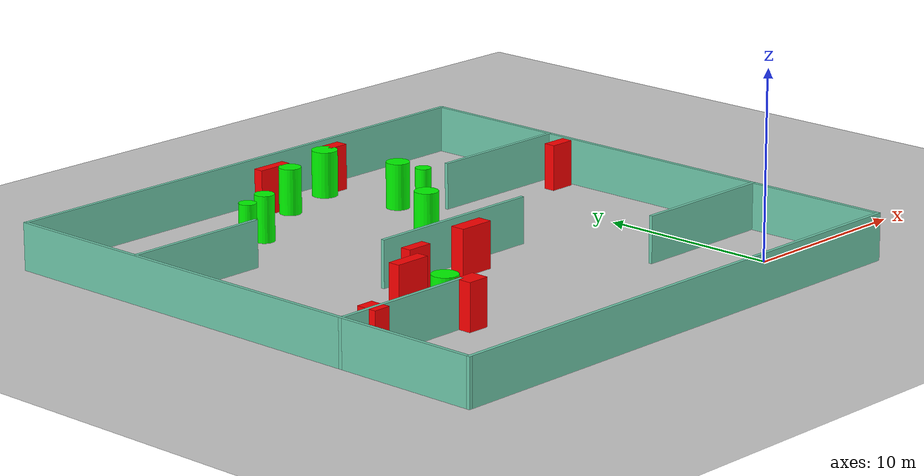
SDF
<sdf version="1.7">
 <world name="default">
  <light name="sun" type="directional">
   <pose>0 0 10 0 -0 0</pose>
   <diffuse>0.8 0.8 0.8 1</diffuse>
   <specular>0.2 0.2 0.2 1</specular>
   <attenuation>
    <range>1000</range>
    <constant>0.9</constant>
    <linear>0.01</linear>
    <quadratic>0.001</quadratic>
   </attenuation>
   <direction>-0.5 0.1 -0.9</direction>
   <spot><inner_angle>0</inner_angle><outer_angle>0</outer_angle><falloff>0</falloff></spot>
  </light>
  <model name="ground_plane">
   <static>1</static>
   <link name="link">
    <collision name="collision">
     <geometry><plane><normal>0 0 1</normal><size>100 100</size></plane></geometry>
     <surface>
      <contact><collide_bitmask>65535</collide_bitmask></contact>
      <friction><ode><mu>100</mu><mu2>50</mu2></ode></friction>
     </surface>
    </collision>
    <visual name="visual">
     <cast_shadows>0</cast_shadows>
     <geometry><plane><normal>0 0 1</normal><size>100 100</size></plane></geometry>
     <material>
      <script><uri>file://media/materials/scripts/gazebo.material</uri><name>Gazebo/Grey</name></script>
     </material>
    </visual>
   </link>
  </model>
  <gravity>0 0 -9.8</gravity>
  <magnetic_field>6e-06 2.3e-05 -4.2e-05</magnetic_field>
  <atmosphere type="adiabatic"/>
  <physics type="ode">
   <max_step_size>0.001</max_step_size>
   <real_time_factor>1</real_time_factor>
   <real_time_update_rate>1000</real_time_update_rate>
  </physics>
  <scene><ambient>0.4 0.4 0.4 1</ambient><background>0.7 0.7 0.7 1</background><shadows>1</shadows></scene>
  <spherical_coordinates>
   <surface_model>EARTH_WGS84</surface_model>
   <latitude_deg>0</latitude_deg>
   <longitude_deg>0</longitude_deg>
   <elevation>0</elevation>
   <heading_deg>0</heading_deg>
  </spherical_coordinates>
  <model name="my_base_walls">
   <link name="Wall_10">
    <collision name="Wall_10_Collision">
     <geometry><box><size>8.2 0.2 2.5</size></box></geometry>
     <pose>0 0 1.25 0 -0 0</pose>
    </collision>
    <visual name="Wall_10_Visual">
     <pose>0 0 1.25 0 -0 0</pose>
     <geometry><box><size>8.2 0.2 2.5</size></box></geometry>
     <material>
      <script><uri>file://media/materials/scripts/gazebo.material</uri><name>Gazebo/Grey</name></script>
      <ambient>0.435294 0.796078 0.67451 1</ambient>
     </material>
     <meta><layer>0</layer></meta>
    </visual>
    <pose>-11 -7 0 0 -0 0</pose>
   </link>
   <link name="Wall_12">
    <collision name="Wall_12_Collision">
     <geometry><box><size>8.2 0.2 2.5</size></box></geometry>
     <pose>0 0 1.25 0 -0 0</pose>
    </collision>
    <visual name="Wall_12_Visual">
     <pose>0 0 1.25 0 -0 0</pose>
     <geometry><box><size>8.2 0.2 2.5</size></box></geometry>
     <material>
      <script><uri>file://media/materials/scripts/gazebo.material</uri><name>Gazebo/Grey</name></script>
      <ambient>0.435294 0.796078 0.67451 1</ambient>
     </material>
     <meta><layer>0</layer></meta>
    </visual>
    <pose>-11 7 0 0 -0 0</pose>
   </link>
   <link name="Wall_14">
    <collision name="Wall_14_Collision">
     <geometry><box><size>8.2 0.2 2.5</size></box></geometry>
     <pose>0 0 1.25 0 -0 0</pose>
    </collision>
    <visual name="Wall_14_Visual">
     <pose>0 0 1.25 0 -0 0</pose>
     <geometry><box><size>8.2 0.2 2.5</size></box></geometry>
     <material>
      <script><uri>file://media/materials/scripts/gazebo.material</uri><name>Gazebo/Grey</name></script>
      <ambient>0.435294 0.796078 0.67451 1</ambient>
     </material>
     <meta><layer>0</layer></meta>
    </visual>
    <pose>11 7 0 0 -0 3.14159</pose>
   </link>
   <link name="Wall_16">
    <collision name="Wall_16_Collision">
     <geometry><box><size>10.2 0.2 2.5</size></box></geometry>
     <pose>0 0 1.25 0 -0 0</pose>
    </collision>
    <visual name="Wall_16_Visual">
     <pose>0 0 1.25 0 -0 0</pose>
     <geometry><box><size>10.2 0.2 2.5</size></box></geometry>
     <material>
      <script><uri>file://media/materials/scripts/gazebo.material</uri><name>Gazebo/Grey</name></script>
      <ambient>0.435294 0.796078 0.67451 1</ambient>
     </material>
     <meta><layer>0</layer></meta>
    </visual>
    <pose>0 0 0 0 -0 3.14159</pose>
   </link>
   <link name="Wall_2">
    <collision name="Wall_2_Collision">
     <geometry><box><size>30.2 0.2 2.5</size></box></geometry>
     <pose>0 0 1.25 0 -0 0</pose>
    </collision>
    <visual name="Wall_2_Visual">
     <pose>0 0 1.25 0 -0 0</pose>
     <geometry><box><size>30.2 0.2 2.5</size></box></geometry>
     <material>
      <script><uri>file://media/materials/scripts/gazebo.material</uri><name>Gazebo/Grey</name></script>
      <ambient>0.435294 0.796078 0.67451 1</ambient>
     </material>
     <meta><layer>0</layer></meta>
    </visual>
    <pose>0 -15 0 0 -0 3.14159</pose>
   </link>
   <link name="Wall_3">
    <collision name="Wall_3_Collision">
     <geometry><box><size>30.2 0.2 2.5</size></box></geometry>
     <pose>0 0 1.25 0 -0 0</pose>
    </collision>
    <visual name="Wall_3_Visual">
     <pose>0 0 1.25 0 -0 0</pose>
     <geometry><box><size>30.2 0.2 2.5</size></box></geometry>
     <material>
      <script><uri>file://media/materials/scripts/gazebo.material</uri><name>Gazebo/Grey</name></script>
      <ambient>0.435294 0.796078 0.67451 1</ambient>
     </material>
     <meta><layer>0</layer></meta>
    </visual>
    <pose>-15 0 0 0 -0 1.5708</pose>
   </link>
   <link name="Wall_4">
    <collision name="Wall_4_Collision">
     <geometry><box><size>30.2 0.2 2.5</size></box></geometry>
     <pose>0 0 1.25 0 -0 0</pose>
    </collision>
    <visual name="Wall_4_Visual">
     <pose>0 0 1.25 0 -0 0</pose>
     <geometry><box><size>30.2 0.2 2.5</size></box></geometry>
     <material>
      <script><uri>file://media/materials/scripts/gazebo.material</uri><name>Gazebo/Grey</name></script>
      <ambient>0.435294 0.796078 0.67451 1</ambient>
     </material>
     <meta><layer>0</layer></meta>
    </visual>
    <pose>0 15 0 0 -0 0</pose>
   </link>
   <link name="Wall_6">
    <collision name="Wall_6_Collision">
     <geometry><box><size>30.2 0.2 2.5</size></box></geometry>
     <pose>0 0 1.25 0 -0 0</pose>
    </collision>
    <visual name="Wall_6_Visual">
     <pose>0 0 1.25 0 -0 0</pose>
     <geometry><box><size>30.2 0.2 2.5</size></box></geometry>
     <material>
      <script><uri>file://media/materials/scripts/gazebo.material</uri><name>Gazebo/Grey</name></script>
      <ambient>0.435294 0.796078 0.67451 1</ambient>
     </material>
     <meta><layer>0</layer></meta>
    </visual>
    <pose>15 0 0 0 -0 1.5708</pose>
   </link>
   <link name="Wall_8">
    <collision name="Wall_8_Collision">
     <geometry><box><size>8.2 0.2 2.5</size></box></geometry>
     <pose>0 0 1.25 0 -0 0</pose>
    </collision>
    <visual name="Wall_8_Visual">
     <pose>0 0 1.25 0 -0 0</pose>
     <geometry><box><size>8.2 0.2 2.5</size></box></geometry>
     <material>
      <script><uri>file://media/materials/scripts/gazebo.material</uri><name>Gazebo/Grey</name></script>
      <ambient>0.435294 0.796078 0.67451 1</ambient>
     </material>
     <meta><layer>0</layer></meta>
    </visual>
    <pose>11 -7 0 0 -0 3.14159</pose>
   </link>
   <static>1</static>
   <pose>-11 11 0 0 -0 0</pose>
  </model>
  <model name="cylinder1">
   <static>1</static>
   <link name="link">
    <inertial>
     <mass>1</mass>
     <inertia><ixx>0.5</ixx><ixy>0</ixy><ixz>0</ixz><iyy>0.5</iyy><iyz>0</iyz><izz>1</izz></inertia>
    </inertial>
    <collision name="collision">
     <geometry><cylinder><radius>0.6450734228280675</radius><length>2.5</length></cylinder></geometry>
    </collision>
    <visual name="visual">
     <geometry><cylinder><radius>0.6450734228280675</radius><length>2.5</length></cylinder></geometry>
     <material>
      <ambient>0 1 0 1</ambient>
      <diffuse>0 1 0 1</diffuse>
      <specular>0.1 0.1 0.1 1</specular>
      <emissive>0 0 0 0</emissive>
     </material>
    </visual>
   </link>
   <pose>-8.485942803298816 15.27104300888562 1.25 0 0 0</pose>
  </model>
  <model name="cylinder2">
   <static>1</static>
   <link name="link">
    <inertial>
     <mass>1</mass>
     <inertia><ixx>0.5</ixx><ixy>0</ixy><ixz>0</ixz><iyy>0.5</iyy><iyz>0</iyz><izz>1</izz></inertia>
    </inertial>
    <collision name="collision">
     <geometry><cylinder><radius>0.46727635755425856</radius><length>2.5</length></cylinder></geometry>
    </collision>
    <visual name="visual">
     <geometry><cylinder><radius>0.46727635755425856</radius><length>2.5</length></cylinder></geometry>
     <material>
      <ambient>0 1 0 1</ambient>
      <diffuse>0 1 0 1</diffuse>
      <specular>0.1 0.1 0.1 1</specular>
      <emissive>0 0 0 0</emissive>
     </material>
    </visual>
   </link>
   <pose>-16.200236934852764 20.39649418300123 1.25 0 0 0</pose>
  </model>
  <model name="cylinder3">
   <static>1</static>
   <link name="link">
    <inertial>
     <mass>1</mass>
     <inertia><ixx>0.5</ixx><ixy>0</ixy><ixz>0</ixz><iyy>0.5</iyy><iyz>0</iyz><izz>1</izz></inertia>
    </inertial>
    <collision name="collision">
     <geometry><cylinder><radius>0.5949647687196524</radius><length>2.5</length></cylinder></geometry>
    </collision>
    <visual name="visual">
     <geometry><cylinder><radius>0.5949647687196524</radius><length>2.5</length></cylinder></geometry>
     <material>
      <ambient>0 1 0 1</ambient>
      <diffuse>0 1 0 1</diffuse>
      <specular>0.1 0.1 0.1 1</specular>
      <emissive>0 0 0 0</emissive>
     </material>
    </visual>
   </link>
   <pose>-10.131025606863753 23.527638765621024 1.25 0 0 0</pose>
  </model>
  <model name="cylinder4">
   <static>1</static>
   <link name="link">
    <inertial>
     <mass>1</mass>
     <inertia><ixx>0.5</ixx><ixy>0</ixy><ixz>0</ixz><iyy>0.5</iyy><iyz>0</iyz><izz>1</izz></inertia>
    </inertial>
    <collision name="collision">
     <geometry><cylinder><radius>0.6955871540741441</radius><length>2.5</length></cylinder></geometry>
    </collision>
    <visual name="visual">
     <geometry><cylinder><radius>0.6955871540741441</radius><length>2.5</length></cylinder></geometry>
     <material>
      <ambient>0 1 0 1</ambient>
      <diffuse>0 1 0 1</diffuse>
      <specular>0.1 0.1 0.1 1</specular>
      <emissive>0 0 0 0</emissive>
     </material>
    </visual>
   </link>
   <pose>-6.566845945953055 24.54476362276498 1.25 0 0 0</pose>
  </model>
  <model name="cylinder5">
   <static>1</static>
   <link name="link">
    <inertial>
     <mass>1</mass>
     <inertia><ixx>0.5</ixx><ixy>0</ixy><ixz>0</ixz><iyy>0.5</iyy><iyz>0</iyz><izz>1</izz></inertia>
    </inertial>
    <collision name="collision">
     <geometry><cylinder><radius>0.42661705789255505</radius><length>2.5</length></cylinder></geometry>
    </collision>
    <visual name="visual">
     <geometry><cylinder><radius>0.42661705789255505</radius><length>2.5</length></cylinder></geometry>
     <material>
      <ambient>0 1 0 1</ambient>
      <diffuse>0 1 0 1</diffuse>
      <specular>0.1 0.1 0.1 1</specular>
      <emissive>0 0 0 0</emissive>
     </material>
    </visual>
   </link>
   <pose>-5.501168806549636 18.335218645636306 1.25 0 0 0</pose>
  </model>
  <model name="cylinder6">
   <static>1</static>
   <link name="link">
    <inertial>
     <mass>1</mass>
     <inertia><ixx>0.5</ixx><ixy>0</ixy><ixz>0</ixz><iyy>0.5</iyy><iyz>0</iyz><izz>1</izz></inertia>
    </inertial>
    <collision name="collision">
     <geometry><cylinder><radius>0.5271858512293892</radius><length>2.5</length></cylinder></geometry>
    </collision>
    <visual name="visual">
     <geometry><cylinder><radius>0.5271858512293892</radius><length>2.5</length></cylinder></geometry>
     <material>
      <ambient>0 1 0 1</ambient>
      <diffuse>0 1 0 1</diffuse>
      <specular>0.1 0.1 0.1 1</specular>
      <emissive>0 0 0 0</emissive>
     </material>
    </visual>
   </link>
   <pose>-14.496420874564837 20.933275187320305 1.25 0 0 0</pose>
  </model>
  <model name="cylinder7">
   <static>1</static>
   <link name="link">
    <inertial>
     <mass>1</mass>
     <inertia><ixx>0.5</ixx><ixy>0</ixy><ixz>0</ixz><iyy>0.5</iyy><iyz>0</iyz><izz>1</izz></inertia>
    </inertial>
    <collision name="collision">
     <geometry><cylinder><radius>0.6322177813575918</radius><length>2.5</length></cylinder></geometry>
    </collision>
    <visual name="visual">
     <geometry><cylinder><radius>0.6322177813575918</radius><length>2.5</length></cylinder></geometry>
     <material>
      <ambient>0 1 0 1</ambient>
      <diffuse>0 1 0 1</diffuse>
      <specular>0.1 0.1 0.1 1</specular>
      <emissive>0 0 0 0</emissive>
     </material>
    </visual>
   </link>
   <pose>-5.585130548565944 20.097822513880953 1.25 0 0 0</pose>
  </model>
  <model name="cylinder8">
   <static>1</static>
   <link name="link">
    <inertial>
     <mass>1</mass>
     <inertia><ixx>0.5</ixx><ixy>0</ixy><ixz>0</ixz><iyy>0.5</iyy><iyz>0</iyz><izz>1</izz></inertia>
    </inertial>
    <collision name="collision">
     <geometry><cylinder><radius>0.6896953078632648</radius><length>2.5</length></cylinder></geometry>
    </collision>
    <visual name="visual">
     <geometry><cylinder><radius>0.6896953078632648</radius><length>2.5</length></cylinder></geometry>
     <material>
      <ambient>0 1 0 1</ambient>
      <diffuse>0 1 0 1</diffuse>
      <specular>0.1 0.1 0.1 1</specular>
      <emissive>0 0 0 0</emissive>
     </material>
    </visual>
   </link>
   <pose>-18.017713555491834 5.003977011624119 1.25 0 0 0</pose>
  </model>
  <model name="box1">
   <static>1</static>
   <link name="link">
    <inertial>
     <mass>1</mass>
     <inertia><ixx>0.083</ixx><ixy>0</ixy><ixz>0</ixz><iyy>0.083</iyy><iyz>0</iyz><izz>0.083</izz></inertia>
    </inertial>
    <collision name="collision">
     <geometry><box><size>1.9980929567284118 0.6480552571560035 2.5</size></box></geometry>
    </collision>
    <visual name="visual">
     <geometry><box><size>1.9980929567284118 0.6480552571560035 2.5</size></box></geometry>
     <material>
      <ambient>1 0 0 1</ambient>
      <diffuse>1 0 0 1</diffuse>
      <specular>0.1 0.1 0.1 1</specular>
      <emissive>0 0 0 0</emissive>
     </material>
    </visual>
    <sensor name="my_contact" type="contact">
     <contact><collision>box_collision</collision><topic>__default_topic__</topic></contact>
    </sensor>
   </link>
   <pose>-17.538054963608474 7.875803486075226 1.25 0 0 0</pose>
  </model>
  <model name="box2">
   <static>1</static>
   <link name="link">
    <inertial>
     <mass>1</mass>
     <inertia><ixx>0.083</ixx><ixy>0</ixy><ixz>0</ixz><iyy>0.083</iyy><iyz>0</iyz><izz>0.083</izz></inertia>
    </inertial>
    <collision name="collision">
     <geometry><box><size>1.448213968036836 0.571456540996274 2.5</size></box></geometry>
    </collision>
    <visual name="visual">
     <geometry><box><size>1.448213968036836 0.571456540996274 2.5</size></box></geometry>
     <material>
      <ambient>1 0 0 1</ambient>
      <diffuse>1 0 0 1</diffuse>
      <specular>0.1 0.1 0.1 1</specular>
      <emissive>0 0 0 0</emissive>
     </material>
    </visual>
    <sensor name="my_contact" type="contact">
     <contact><collision>box_collision</collision><topic>__default_topic__</topic></contact>
    </sensor>
   </link>
   <pose>-15.70027828633228 9.128871581082649 1.25 0 0 0</pose>
  </model>
  <model name="box3">
   <static>1</static>
   <link name="link">
    <inertial>
     <mass>1</mass>
     <inertia><ixx>0.083</ixx><ixy>0</ixy><ixz>0</ixz><iyy>0.083</iyy><iyz>0</iyz><izz>0.083</izz></inertia>
    </inertial>
    <collision name="collision">
     <geometry><box><size>1.643191396158272 0.6796150436436558 2.5</size></box></geometry>
    </collision>
    <visual name="visual">
     <geometry><box><size>1.643191396158272 0.6796150436436558 2.5</size></box></geometry>
     <material>
      <ambient>1 0 0 1</ambient>
      <diffuse>1 0 0 1</diffuse>
      <specular>0.1 0.1 0.1 1</specular>
      <emissive>0 0 0 0</emissive>
     </material>
    </visual>
    <sensor name="my_contact" type="contact">
     <contact><collision>box_collision</collision><topic>__default_topic__</topic></contact>
    </sensor>
   </link>
   <pose>-5.824383105082315 24.80662916474938 1.25 0 0 0</pose>
  </model>
  <model name="box4">
   <static>1</static>
   <link name="link">
    <inertial>
     <mass>1</mass>
     <inertia><ixx>0.083</ixx><ixy>0</ixy><ixz>0</ixz><iyy>0.083</iyy><iyz>0</iyz><izz>0.083</izz></inertia>
    </inertial>
    <collision name="collision">
     <geometry><box><size>1.4156582616063758 0.6328229744354551 2.5</size></box></geometry>
    </collision>
    <visual name="visual">
     <geometry><box><size>1.4156582616063758 0.6328229744354551 2.5</size></box></geometry>
     <material>
      <ambient>1 0 0 1</ambient>
      <diffuse>1 0 0 1</diffuse>
      <specular>0.1 0.1 0.1 1</specular>
      <emissive>0 0 0 0</emissive>
     </material>
    </visual>
    <sensor name="my_contact" type="contact">
     <contact><collision>box_collision</collision><topic>__default_topic__</topic></contact>
    </sensor>
   </link>
   <pose>2.9759175050511644 16.45035124493721 1.25 0 0 0</pose>
  </model>
  <model name="box5">
   <static>1</static>
   <link name="link">
    <inertial>
     <mass>1</mass>
     <inertia><ixx>0.083</ixx><ixy>0</ixy><ixz>0</ixz><iyy>0.083</iyy><iyz>0</iyz><izz>0.083</izz></inertia>
    </inertial>
    <collision name="collision">
     <geometry><box><size>2.0010723952838063 0.534870469336673 2.5</size></box></geometry>
    </collision>
    <visual name="visual">
     <geometry><box><size>2.0010723952838063 0.534870469336673 2.5</size></box></geometry>
     <material>
      <ambient>1 0 0 1</ambient>
      <diffuse>1 0 0 1</diffuse>
      <specular>0.1 0.1 0.1 1</specular>
      <emissive>0 0 0 0</emissive>
     </material>
    </visual>
    <sensor name="my_contact" type="contact">
     <contact><collision>box_collision</collision><topic>__default_topic__</topic></contact>
    </sensor>
   </link>
   <pose>-10.665422571073586 24.32511095664961 1.25 0 0 0</pose>
  </model>
  <model name="box6">
   <static>1</static>
   <link name="link">
    <inertial>
     <mass>1</mass>
     <inertia><ixx>0.083</ixx><ixy>0</ixy><ixz>0</ixz><iyy>0.083</iyy><iyz>0</iyz><izz>0.083</izz></inertia>
    </inertial>
    <collision name="collision">
     <geometry><box><size>2.0004924967633118 0.7892585313964917 2.5</size></box></geometry>
    </collision>
    <visual name="visual">
     <geometry><box><size>2.0004924967633118 0.7892585313964917 2.5</size></box></geometry>
     <material>
      <ambient>1 0 0 1</ambient>
      <diffuse>1 0 0 1</diffuse>
      <specular>0.1 0.1 0.1 1</specular>
      <emissive>0 0 0 0</emissive>
     </material>
    </visual>
    <sensor name="my_contact" type="contact">
     <contact><collision>box_collision</collision><topic>__default_topic__</topic></contact>
    </sensor>
   </link>
   <pose>-11.151254762263418 9.68141685542121 1.25 0 0 0</pose>
  </model>
  <model name="box7">
   <static>1</static>
   <link name="link">
    <inertial>
     <mass>1</mass>
     <inertia><ixx>0.083</ixx><ixy>0</ixy><ixz>0</ixz><iyy>0.083</iyy><iyz>0</iyz><izz>0.083</izz></inertia>
    </inertial>
    <collision name="collision">
     <geometry><box><size>1.2193414210977194 0.9711509438637267 2.5</size></box></geometry>
    </collision>
    <visual name="visual">
     <geometry><box><size>1.2193414210977194 0.9711509438637267 2.5</size></box></geometry>
     <material>
      <ambient>1 0 0 1</ambient>
      <diffuse>1 0 0 1</diffuse>
      <specular>0.1 0.1 0.1 1</specular>
      <emissive>0 0 0 0</emissive>
     </material>
    </visual>
    <sensor name="my_contact" type="contact">
     <contact><collision>box_collision</collision><topic>__default_topic__</topic></contact>
    </sensor>
   </link>
   <pose>-17.60918363734707 3.6813595258060543 1.25 0 0 0</pose>
  </model>
  <model name="box8">
   <static>1</static>
   <link name="link">
    <inertial>
     <mass>1</mass>
     <inertia><ixx>0.083</ixx><ixy>0</ixy><ixz>0</ixz><iyy>0.083</iyy><iyz>0</iyz><izz>0.083</izz></inertia>
    </inertial>
    <collision name="collision">
     <geometry><box><size>0.9560595130924674 1.1465356214283124 2.5</size></box></geometry>
    </collision>
    <visual name="visual">
     <geometry><box><size>0.9560595130924674 1.1465356214283124 2.5</size></box></geometry>
     <material>
      <ambient>1 0 0 1</ambient>
      <diffuse>1 0 0 1</diffuse>
      <specular>0.1 0.1 0.1 1</specular>
      <emissive>0 0 0 0</emissive>
     </material>
    </visual>
    <sensor name="my_contact" type="contact">
     <contact><collision>box_collision</collision><topic>__default_topic__</topic></contact>
    </sensor>
   </link>
   <pose>-23.818020372646338 4.08106996141262 1.25 0 0 0</pose>
  </model>
 </world>
</sdf>
